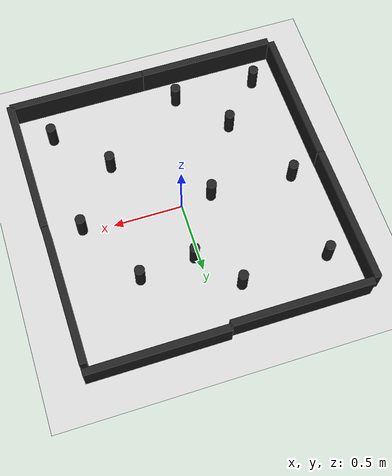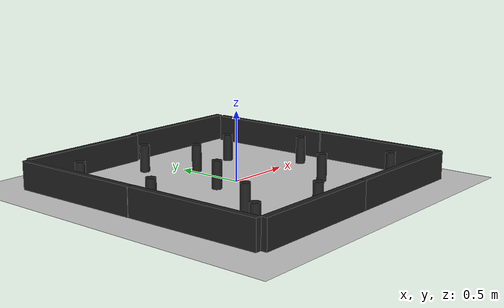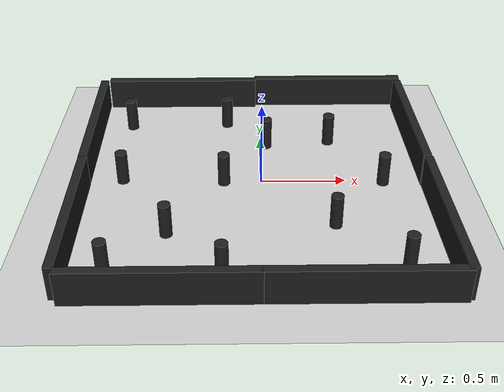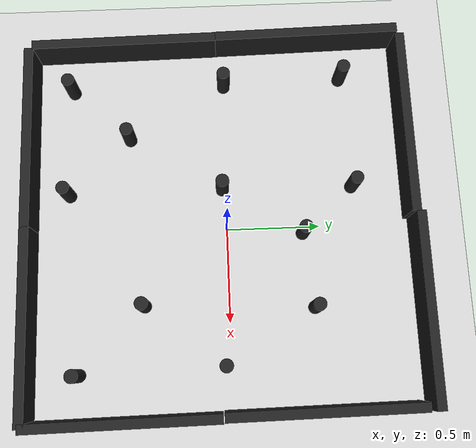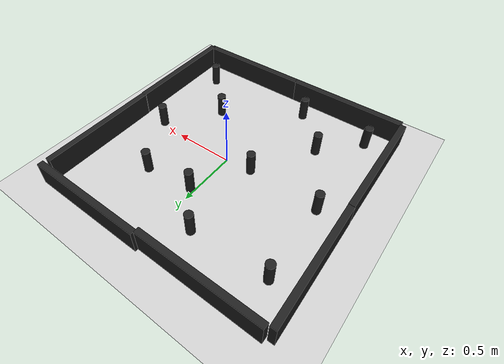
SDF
<sdf version="1.6">
 <world name="default">
  <light name="sun" type="directional">
   <pose>0 0 10 0 -0 0</pose>
   <diffuse>0.8 0.8 0.8 1</diffuse>
   <specular>0.2 0.2 0.2 1</specular>
   <attenuation>
    <range>1000</range>
    <constant>0.9</constant>
    <linear>0.01</linear>
    <quadratic>0.001</quadratic>
   </attenuation>
   <direction>-0.5 0.1 -0.9</direction>
  </light>
  <model name="ground_plane">
   <static>1</static>
   <link name="link">
    <collision name="collision">
     <geometry><plane><normal>0 0 1</normal><size>100 100</size></plane></geometry>
     <surface>
      <contact><collide_bitmask>65535</collide_bitmask></contact>
      <friction><ode><mu>100</mu><mu2>50</mu2></ode></friction>
     </surface>
    </collision>
    <visual name="visual">
     <cast_shadows>0</cast_shadows>
     <geometry><plane><normal>0 0 1</normal><size>100 100</size></plane></geometry>
     <material>
      <script><uri>file://media/materials/scripts/gazebo.material</uri><name>Gazebo/Grey</name></script>
     </material>
    </visual>
   </link>
  </model>
  <gravity>0 0 -9.8</gravity>
  <magnetic_field>6e-06 2.3e-05 -4.2e-05</magnetic_field>
  <atmosphere type="adiabatic"/>
  <physics name="default_physics" default="0" type="ode">
   <max_step_size>0.001</max_step_size>
   <real_time_factor>1</real_time_factor>
   <real_time_update_rate>1000</real_time_update_rate>
  </physics>
  <scene><ambient>0.4 0.4 0.4 1</ambient><background>0.7 0.7 0.7 1</background><shadows>1</shadows></scene>
  <audio><device>default</device></audio>
  <spherical_coordinates>
   <surface_model>EARTH_WGS84</surface_model>
   <latitude_deg>0</latitude_deg>
   <longitude_deg>0</longitude_deg>
   <elevation>0</elevation>
   <heading_deg>0</heading_deg>
  </spherical_coordinates>
  <model name="wall">
   <link name="link">
    <inertial>
     <mass>1</mass>
     <inertia>
      <ixx>0.166667</ixx>
      <ixy>0</ixy>
      <ixz>0</ixz>
      <iyy>0.166667</iyy>
      <iyz>0</iyz>
      <izz>0.166667</izz>
     </inertia>
    </inertial>
    <visual name="visual">
     <geometry><box><size>1 0.05 0.2</size></box></geometry>
     <material>
      <script><name>Gazebo/Black</name><uri>file://media/materials/scripts/gazebo.material</uri></script>
      <shader type="vertex"><normal_map>__default__</normal_map></shader>
      <ambient>0.3 0.3 0.3 1</ambient>
      <diffuse>0.7 0.7 0.7 1</diffuse>
      <specular>0.01 0.01 0.01 1</specular>
      <emissive>0 0 0 1</emissive>
     </material>
    </visual>
    <collision name="collision">
     <geometry><box><size>1 0.05 0.2</size></box></geometry>
     <surface>
      <friction>
       <ode><mu>1</mu><mu2>1</mu2><fdir1>0 0 0</fdir1><slip1>0</slip1><slip2>0</slip2></ode>
       <torsional>
        <coefficient>1</coefficient>
        <patch_radius>0</patch_radius>
        <surface_radius>0</surface_radius>
        <use_patch_radius>1</use_patch_radius>
        <ode><slip>0</slip></ode>
       </torsional>
      </friction>
      <bounce><restitution_coefficient>0</restitution_coefficient><threshold>1e+06</threshold></bounce>
      <contact>
       <collide_without_contact>0</collide_without_contact>
       <collide_without_contact_bitmask>1</collide_without_contact_bitmask>
       <collide_bitmask>1</collide_bitmask>
       <ode>
        <soft_cfm>0</soft_cfm>
        <soft_erp>0.2</soft_erp>
        <kp>1e+13</kp>
        <kd>1</kd>
        <max_vel>0.01</max_vel>
        <min_depth>0</min_depth>
       </ode>
       <bullet>
        <split_impulse>1</split_impulse>
        <split_impulse_penetration_threshold>-0.01</split_impulse_penetration_threshold>
        <soft_cfm>0</soft_cfm>
        <soft_erp>0.2</soft_erp>
        <kp>1e+13</kp>
        <kd>1</kd>
       </bullet>
      </contact>
     </surface>
    </collision>
   </link>
   <static>1</static>
   <pose>-0.526171 0.981901 0.1 0 -0 0</pose>
  </model>
  <model name="wall_clone">
   <link name="link">
    <inertial>
     <mass>1</mass>
     <inertia>
      <ixx>0.166667</ixx>
      <ixy>0</ixy>
      <ixz>0</ixz>
      <iyy>0.166667</iyy>
      <iyz>0</iyz>
      <izz>0.166667</izz>
     </inertia>
    </inertial>
    <visual name="visual">
     <geometry><box><size>1 0.05 0.2</size></box></geometry>
     <material>
      <script><name>Gazebo/Black</name><uri>file://media/materials/scripts/gazebo.material</uri></script>
      <shader type="vertex"><normal_map>__default__</normal_map></shader>
      <ambient>0.3 0.3 0.3 1</ambient>
      <diffuse>0.7 0.7 0.7 1</diffuse>
      <specular>0.01 0.01 0.01 1</specular>
      <emissive>0 0 0 1</emissive>
     </material>
    </visual>
    <collision name="collision">
     <geometry><box><size>1 0.05 0.2</size></box></geometry>
     <surface>
      <friction>
       <ode><mu>1</mu><mu2>1</mu2><fdir1>0 0 0</fdir1><slip1>0</slip1><slip2>0</slip2></ode>
       <torsional>
        <coefficient>1</coefficient>
        <patch_radius>0</patch_radius>
        <surface_radius>0</surface_radius>
        <use_patch_radius>1</use_patch_radius>
        <ode><slip>0</slip></ode>
       </torsional>
      </friction>
      <bounce><restitution_coefficient>0</restitution_coefficient><threshold>1e+06</threshold></bounce>
      <contact>
       <collide_without_contact>0</collide_without_contact>
       <collide_without_contact_bitmask>1</collide_without_contact_bitmask>
       <collide_bitmask>1</collide_bitmask>
       <ode>
        <soft_cfm>0</soft_cfm>
        <soft_erp>0.2</soft_erp>
        <kp>1e+13</kp>
        <kd>1</kd>
        <max_vel>0.01</max_vel>
        <min_depth>0</min_depth>
       </ode>
       <bullet>
        <split_impulse>1</split_impulse>
        <split_impulse_penetration_threshold>-0.01</split_impulse_penetration_threshold>
        <soft_cfm>0</soft_cfm>
        <soft_erp>0.2</soft_erp>
        <kp>1e+13</kp>
        <kd>1</kd>
       </bullet>
      </contact>
     </surface>
    </collision>
   </link>
   <static>1</static>
   <pose>0.484346 -1.04397 0.1 0 -0 0</pose>
  </model>
  <model name="wall_clone_0">
   <link name="link">
    <inertial>
     <mass>1</mass>
     <inertia>
      <ixx>0.166667</ixx>
      <ixy>0</ixy>
      <ixz>0</ixz>
      <iyy>0.166667</iyy>
      <iyz>0</iyz>
      <izz>0.166667</izz>
     </inertia>
    </inertial>
    <visual name="visual">
     <geometry><box><size>1 0.05 0.2</size></box></geometry>
     <material>
      <script><name>Gazebo/Black</name><uri>file://media/materials/scripts/gazebo.material</uri></script>
      <shader type="vertex"><normal_map>__default__</normal_map></shader>
      <ambient>0.3 0.3 0.3 1</ambient>
      <diffuse>0.7 0.7 0.7 1</diffuse>
      <specular>0.01 0.01 0.01 1</specular>
      <emissive>0 0 0 1</emissive>
     </material>
    </visual>
    <collision name="collision">
     <geometry><box><size>1 0.05 0.2</size></box></geometry>
     <surface>
      <friction>
       <ode><mu>1</mu><mu2>1</mu2><fdir1>0 0 0</fdir1><slip1>0</slip1><slip2>0</slip2></ode>
       <torsional>
        <coefficient>1</coefficient>
        <patch_radius>0</patch_radius>
        <surface_radius>0</surface_radius>
        <use_patch_radius>1</use_patch_radius>
        <ode><slip>0</slip></ode>
       </torsional>
      </friction>
      <bounce><restitution_coefficient>0</restitution_coefficient><threshold>1e+06</threshold></bounce>
      <contact>
       <collide_without_contact>0</collide_without_contact>
       <collide_without_contact_bitmask>1</collide_without_contact_bitmask>
       <collide_bitmask>1</collide_bitmask>
       <ode>
        <soft_cfm>0</soft_cfm>
        <soft_erp>0.2</soft_erp>
        <kp>1e+13</kp>
        <kd>1</kd>
        <max_vel>0.01</max_vel>
        <min_depth>0</min_depth>
       </ode>
       <bullet>
        <split_impulse>1</split_impulse>
        <split_impulse_penetration_threshold>-0.01</split_impulse_penetration_threshold>
        <soft_cfm>0</soft_cfm>
        <soft_erp>0.2</soft_erp>
        <kp>1e+13</kp>
        <kd>1</kd>
       </bullet>
      </contact>
     </surface>
    </collision>
   </link>
   <static>1</static>
   <pose>-0.508962 -1.04408 0.1 0 -0 0</pose>
  </model>
  <model name="wall_clone_0_clone">
   <link name="link">
    <inertial>
     <mass>1</mass>
     <inertia>
      <ixx>0.166667</ixx>
      <ixy>0</ixy>
      <ixz>0</ixz>
      <iyy>0.166667</iyy>
      <iyz>0</iyz>
      <izz>0.166667</izz>
     </inertia>
    </inertial>
    <visual name="visual">
     <geometry><box><size>1 0.05 0.2</size></box></geometry>
     <material>
      <script><name>Gazebo/Black</name><uri>file://media/materials/scripts/gazebo.material</uri></script>
      <shader type="vertex"><normal_map>__default__</normal_map></shader>
      <ambient>0.3 0.3 0.3 1</ambient>
      <diffuse>0.7 0.7 0.7 1</diffuse>
      <specular>0.01 0.01 0.01 1</specular>
      <emissive>0 0 0 1</emissive>
     </material>
    </visual>
    <collision name="collision">
     <geometry><box><size>1 0.05 0.2</size></box></geometry>
     <surface>
      <friction>
       <ode><mu>1</mu><mu2>1</mu2><fdir1>0 0 0</fdir1><slip1>0</slip1><slip2>0</slip2></ode>
       <torsional>
        <coefficient>1</coefficient>
        <patch_radius>0</patch_radius>
        <surface_radius>0</surface_radius>
        <use_patch_radius>1</use_patch_radius>
        <ode><slip>0</slip></ode>
       </torsional>
      </friction>
      <bounce><restitution_coefficient>0</restitution_coefficient><threshold>1e+06</threshold></bounce>
      <contact>
       <collide_without_contact>0</collide_without_contact>
       <collide_without_contact_bitmask>1</collide_without_contact_bitmask>
       <collide_bitmask>1</collide_bitmask>
       <ode>
        <soft_cfm>0</soft_cfm>
        <soft_erp>0.2</soft_erp>
        <kp>1e+13</kp>
        <kd>1</kd>
        <max_vel>0.01</max_vel>
        <min_depth>0</min_depth>
       </ode>
       <bullet>
        <split_impulse>1</split_impulse>
        <split_impulse_penetration_threshold>-0.01</split_impulse_penetration_threshold>
        <soft_cfm>0</soft_cfm>
        <soft_erp>0.2</soft_erp>
        <kp>1e+13</kp>
        <kd>1</kd>
       </bullet>
      </contact>
     </surface>
    </collision>
   </link>
   <static>1</static>
   <pose>0.472598 1.00535 0.1 0 -0 0</pose>
  </model>
  <model name="wall_clone_0_clone_0">
   <link name="link">
    <inertial>
     <mass>1</mass>
     <inertia>
      <ixx>0.166667</ixx>
      <ixy>0</ixy>
      <ixz>0</ixz>
      <iyy>0.166667</iyy>
      <iyz>0</iyz>
      <izz>0.166667</izz>
     </inertia>
    </inertial>
    <visual name="visual">
     <geometry><box><size>1 0.05 0.2</size></box></geometry>
     <material>
      <script><name>Gazebo/Black</name><uri>file://media/materials/scripts/gazebo.material</uri></script>
      <shader type="vertex"><normal_map>__default__</normal_map></shader>
      <ambient>0.3 0.3 0.3 1</ambient>
      <diffuse>0.7 0.7 0.7 1</diffuse>
      <specular>0.01 0.01 0.01 1</specular>
      <emissive>0 0 0 1</emissive>
     </material>
    </visual>
    <collision name="collision">
     <geometry><box><size>1 0.05 0.2</size></box></geometry>
     <surface>
      <friction>
       <ode><mu>1</mu><mu2>1</mu2><fdir1>0 0 0</fdir1><slip1>0</slip1><slip2>0</slip2></ode>
       <torsional>
        <coefficient>1</coefficient>
        <patch_radius>0</patch_radius>
        <surface_radius>0</surface_radius>
        <use_patch_radius>1</use_patch_radius>
        <ode><slip>0</slip></ode>
       </torsional>
      </friction>
      <bounce><restitution_coefficient>0</restitution_coefficient><threshold>1e+06</threshold></bounce>
      <contact>
       <collide_without_contact>0</collide_without_contact>
       <collide_without_contact_bitmask>1</collide_without_contact_bitmask>
       <collide_bitmask>1</collide_bitmask>
       <ode>
        <soft_cfm>0</soft_cfm>
        <soft_erp>0.2</soft_erp>
        <kp>1e+13</kp>
        <kd>1</kd>
        <max_vel>0.01</max_vel>
        <min_depth>0</min_depth>
       </ode>
       <bullet>
        <split_impulse>1</split_impulse>
        <split_impulse_penetration_threshold>-0.01</split_impulse_penetration_threshold>
        <soft_cfm>0</soft_cfm>
        <soft_erp>0.2</soft_erp>
        <kp>1e+13</kp>
        <kd>1</kd>
       </bullet>
      </contact>
     </surface>
    </collision>
   </link>
   <static>1</static>
   <pose>-1.03402 -0.526795 0.1 0 -0 1.58499</pose>
  </model>
  <model name="wall_clone_0_clone_1">
   <link name="link">
    <inertial>
     <mass>1</mass>
     <inertia>
      <ixx>0.166667</ixx>
      <ixy>0</ixy>
      <ixz>0</ixz>
      <iyy>0.166667</iyy>
      <iyz>0</iyz>
      <izz>0.166667</izz>
     </inertia>
    </inertial>
    <visual name="visual">
     <geometry><box><size>1 0.05 0.2</size></box></geometry>
     <material>
      <script><name>Gazebo/Black</name><uri>file://media/materials/scripts/gazebo.material</uri></script>
      <shader type="vertex"><normal_map>__default__</normal_map></shader>
      <ambient>0.3 0.3 0.3 1</ambient>
      <diffuse>0.7 0.7 0.7 1</diffuse>
      <specular>0.01 0.01 0.01 1</specular>
      <emissive>0 0 0 1</emissive>
     </material>
    </visual>
    <collision name="collision">
     <geometry><box><size>1 0.05 0.2</size></box></geometry>
     <surface>
      <friction>
       <ode><mu>1</mu><mu2>1</mu2><fdir1>0 0 0</fdir1><slip1>0</slip1><slip2>0</slip2></ode>
       <torsional>
        <coefficient>1</coefficient>
        <patch_radius>0</patch_radius>
        <surface_radius>0</surface_radius>
        <use_patch_radius>1</use_patch_radius>
        <ode><slip>0</slip></ode>
       </torsional>
      </friction>
      <bounce><restitution_coefficient>0</restitution_coefficient><threshold>1e+06</threshold></bounce>
      <contact>
       <collide_without_contact>0</collide_without_contact>
       <collide_without_contact_bitmask>1</collide_without_contact_bitmask>
       <collide_bitmask>1</collide_bitmask>
       <ode>
        <soft_cfm>0</soft_cfm>
        <soft_erp>0.2</soft_erp>
        <kp>1e+13</kp>
        <kd>1</kd>
        <max_vel>0.01</max_vel>
        <min_depth>0</min_depth>
       </ode>
       <bullet>
        <split_impulse>1</split_impulse>
        <split_impulse_penetration_threshold>-0.01</split_impulse_penetration_threshold>
        <soft_cfm>0</soft_cfm>
        <soft_erp>0.2</soft_erp>
        <kp>1e+13</kp>
        <kd>1</kd>
       </bullet>
      </contact>
     </surface>
    </collision>
   </link>
   <static>1</static>
   <pose>-1.05265 0.471629 0.1 0 -0 1.59062</pose>
  </model>
  <model name="wall_clone_0_clone_0_clone">
   <link name="link">
    <inertial>
     <mass>1</mass>
     <inertia>
      <ixx>0.166667</ixx>
      <ixy>0</ixy>
      <ixz>0</ixz>
      <iyy>0.166667</iyy>
      <iyz>0</iyz>
      <izz>0.166667</izz>
     </inertia>
    </inertial>
    <visual name="visual">
     <geometry><box><size>1 0.05 0.2</size></box></geometry>
     <material>
      <script><name>Gazebo/Black</name><uri>file://media/materials/scripts/gazebo.material</uri></script>
      <shader type="vertex"><normal_map>__default__</normal_map></shader>
      <ambient>0.3 0.3 0.3 1</ambient>
      <diffuse>0.7 0.7 0.7 1</diffuse>
      <specular>0.01 0.01 0.01 1</specular>
      <emissive>0 0 0 1</emissive>
     </material>
    </visual>
    <collision name="collision">
     <geometry><box><size>1 0.05 0.2</size></box></geometry>
     <surface>
      <friction>
       <ode><mu>1</mu><mu2>1</mu2><fdir1>0 0 0</fdir1><slip1>0</slip1><slip2>0</slip2></ode>
       <torsional>
        <coefficient>1</coefficient>
        <patch_radius>0</patch_radius>
        <surface_radius>0</surface_radius>
        <use_patch_radius>1</use_patch_radius>
        <ode><slip>0</slip></ode>
       </torsional>
      </friction>
      <bounce><restitution_coefficient>0</restitution_coefficient><threshold>1e+06</threshold></bounce>
      <contact>
       <collide_without_contact>0</collide_without_contact>
       <collide_without_contact_bitmask>1</collide_without_contact_bitmask>
       <collide_bitmask>1</collide_bitmask>
       <ode>
        <soft_cfm>0</soft_cfm>
        <soft_erp>0.2</soft_erp>
        <kp>1e+13</kp>
        <kd>1</kd>
        <max_vel>0.01</max_vel>
        <min_depth>0</min_depth>
       </ode>
       <bullet>
        <split_impulse>1</split_impulse>
        <split_impulse_penetration_threshold>-0.01</split_impulse_penetration_threshold>
        <soft_cfm>0</soft_cfm>
        <soft_erp>0.2</soft_erp>
        <kp>1e+13</kp>
        <kd>1</kd>
       </bullet>
      </contact>
     </surface>
    </collision>
   </link>
   <static>1</static>
   <pose>0.976348 -0.553161 0.1 0 -0 1.58499</pose>
  </model>
  <model name="wall_clone_0_clone_0_clone_clone">
   <link name="link">
    <inertial>
     <mass>1</mass>
     <inertia>
      <ixx>0.166667</ixx>
      <ixy>0</ixy>
      <ixz>0</ixz>
      <iyy>0.166667</iyy>
      <iyz>0</iyz>
      <izz>0.166667</izz>
     </inertia>
    </inertial>
    <visual name="visual">
     <geometry><box><size>1 0.05 0.2</size></box></geometry>
     <material>
      <script><name>Gazebo/Black</name><uri>file://media/materials/scripts/gazebo.material</uri></script>
      <shader type="vertex"><normal_map>__default__</normal_map></shader>
      <ambient>0.3 0.3 0.3 1</ambient>
      <diffuse>0.7 0.7 0.7 1</diffuse>
      <specular>0.01 0.01 0.01 1</specular>
      <emissive>0 0 0 1</emissive>
     </material>
    </visual>
    <collision name="collision">
     <geometry><box><size>1 0.05 0.2</size></box></geometry>
     <surface>
      <friction>
       <ode><mu>1</mu><mu2>1</mu2><fdir1>0 0 0</fdir1><slip1>0</slip1><slip2>0</slip2></ode>
       <torsional>
        <coefficient>1</coefficient>
        <patch_radius>0</patch_radius>
        <surface_radius>0</surface_radius>
        <use_patch_radius>1</use_patch_radius>
        <ode><slip>0</slip></ode>
       </torsional>
      </friction>
      <bounce><restitution_coefficient>0</restitution_coefficient><threshold>1e+06</threshold></bounce>
      <contact>
       <collide_without_contact>0</collide_without_contact>
       <collide_without_contact_bitmask>1</collide_without_contact_bitmask>
       <collide_bitmask>1</collide_bitmask>
       <ode>
        <soft_cfm>0</soft_cfm>
        <soft_erp>0.2</soft_erp>
        <kp>1e+13</kp>
        <kd>1</kd>
        <max_vel>0.01</max_vel>
        <min_depth>0</min_depth>
       </ode>
       <bullet>
        <split_impulse>1</split_impulse>
        <split_impulse_penetration_threshold>-0.01</split_impulse_penetration_threshold>
        <soft_cfm>0</soft_cfm>
        <soft_erp>0.2</soft_erp>
        <kp>1e+13</kp>
        <kd>1</kd>
       </bullet>
      </contact>
     </surface>
    </collision>
   </link>
   <static>1</static>
   <pose>0.958155 0.453326 0.1 0 -0 1.58499</pose>
  </model>
  <model name="cylinder">
   <link name="link">
    <inertial>
     <mass>1</mass>
     <inertia><ixx>0.145833</ixx><ixy>0</ixy><ixz>0</ixz><iyy>0.145833</iyy><iyz>0</iyz><izz>0.125</izz></inertia>
    </inertial>
    <visual name="visual">
     <geometry><cylinder><radius>0.035</radius><length>0.2</length></cylinder></geometry>
     <material>
      <script><name>Gazebo/Black</name><uri>file://media/materials/scripts/gazebo.material</uri></script>
      <shader type="vertex"><normal_map>__default__</normal_map></shader>
      <ambient>0.3 0.3 0.3 1</ambient>
      <diffuse>0.7 0.7 0.7 1</diffuse>
      <specular>0.01 0.01 0.01 1</specular>
      <emissive>0 0 0 1</emissive>
     </material>
    </visual>
    <collision name="collision">
     <geometry><cylinder><radius>0.035</radius><length>0.2</length></cylinder></geometry>
     <surface>
      <friction>
       <ode><mu>1</mu><mu2>1</mu2><fdir1>0 0 0</fdir1><slip1>0</slip1><slip2>0</slip2></ode>
       <torsional>
        <coefficient>1</coefficient>
        <patch_radius>0</patch_radius>
        <surface_radius>0</surface_radius>
        <use_patch_radius>1</use_patch_radius>
        <ode><slip>0</slip></ode>
       </torsional>
      </friction>
      <bounce><restitution_coefficient>0</restitution_coefficient><threshold>1e+06</threshold></bounce>
      <contact>
       <collide_without_contact>0</collide_without_contact>
       <collide_without_contact_bitmask>1</collide_without_contact_bitmask>
       <collide_bitmask>1</collide_bitmask>
       <ode>
        <soft_cfm>0</soft_cfm>
        <soft_erp>0.2</soft_erp>
        <kp>1e+13</kp>
        <kd>1</kd>
        <max_vel>0.01</max_vel>
        <min_depth>0</min_depth>
       </ode>
       <bullet>
        <split_impulse>1</split_impulse>
        <split_impulse_penetration_threshold>-0.01</split_impulse_penetration_threshold>
        <soft_cfm>0</soft_cfm>
        <soft_erp>0.2</soft_erp>
        <kp>1e+13</kp>
        <kd>1</kd>
       </bullet>
      </contact>
     </surface>
    </collision>
   </link>
   <static>1</static>
   <pose>-0.81738 -0.829914 0.1 0 -0 0</pose>
  </model>
  <model name="cylinder_clone">
   <link name="link">
    <inertial>
     <mass>1</mass>
     <inertia><ixx>0.145833</ixx><ixy>0</ixy><ixz>0</ixz><iyy>0.145833</iyy><iyz>0</iyz><izz>0.125</izz></inertia>
    </inertial>
    <visual name="visual">
     <geometry><cylinder><radius>0.035</radius><length>0.2</length></cylinder></geometry>
     <material>
      <script><name>Gazebo/Black</name><uri>file://media/materials/scripts/gazebo.material</uri></script>
      <shader type="vertex"><normal_map>__default__</normal_map></shader>
      <ambient>0.3 0.3 0.3 1</ambient>
      <diffuse>0.7 0.7 0.7 1</diffuse>
      <specular>0.01 0.01 0.01 1</specular>
      <emissive>0 0 0 1</emissive>
     </material>
    </visual>
    <collision name="collision">
     <geometry><cylinder><radius>0.035</radius><length>0.2</length></cylinder></geometry>
     <surface>
      <friction>
       <ode><mu>1</mu><mu2>1</mu2><fdir1>0 0 0</fdir1><slip1>0</slip1><slip2>0</slip2></ode>
       <torsional>
        <coefficient>1</coefficient>
        <patch_radius>0</patch_radius>
        <surface_radius>0</surface_radius>
        <use_patch_radius>1</use_patch_radius>
        <ode><slip>0</slip></ode>
       </torsional>
      </friction>
      <bounce><restitution_coefficient>0</restitution_coefficient><threshold>1e+06</threshold></bounce>
      <contact>
       <collide_without_contact>0</collide_without_contact>
       <collide_without_contact_bitmask>1</collide_without_contact_bitmask>
       <collide_bitmask>1</collide_bitmask>
       <ode>
        <soft_cfm>0</soft_cfm>
        <soft_erp>0.2</soft_erp>
        <kp>1e+13</kp>
        <kd>1</kd>
        <max_vel>0.01</max_vel>
        <min_depth>0</min_depth>
       </ode>
       <bullet>
        <split_impulse>1</split_impulse>
        <split_impulse_penetration_threshold>-0.01</split_impulse_penetration_threshold>
        <soft_cfm>0</soft_cfm>
        <soft_erp>0.2</soft_erp>
        <kp>1e+13</kp>
        <kd>1</kd>
       </bullet>
      </contact>
     </surface>
    </collision>
   </link>
   <static>1</static>
   <pose>-0.825084 0.010533 0.1 0 -0 0</pose>
  </model>
  <model name="cylinder_clone_0">
   <link name="link">
    <inertial>
     <mass>1</mass>
     <inertia><ixx>0.145833</ixx><ixy>0</ixy><ixz>0</ixz><iyy>0.145833</iyy><iyz>0</iyz><izz>0.125</izz></inertia>
    </inertial>
    <visual name="visual">
     <geometry><cylinder><radius>0.035</radius><length>0.2</length></cylinder></geometry>
     <material>
      <script><name>Gazebo/Black</name><uri>file://media/materials/scripts/gazebo.material</uri></script>
      <shader type="vertex"><normal_map>__default__</normal_map></shader>
      <ambient>0.3 0.3 0.3 1</ambient>
      <diffuse>0.7 0.7 0.7 1</diffuse>
      <specular>0.01 0.01 0.01 1</specular>
      <emissive>0 0 0 1</emissive>
     </material>
    </visual>
    <collision name="collision">
     <geometry><cylinder><radius>0.035</radius><length>0.2</length></cylinder></geometry>
     <surface>
      <friction>
       <ode><mu>1</mu><mu2>1</mu2><fdir1>0 0 0</fdir1><slip1>0</slip1><slip2>0</slip2></ode>
       <torsional>
        <coefficient>1</coefficient>
        <patch_radius>0</patch_radius>
        <surface_radius>0</surface_radius>
        <use_patch_radius>1</use_patch_radius>
        <ode><slip>0</slip></ode>
       </torsional>
      </friction>
      <bounce><restitution_coefficient>0</restitution_coefficient><threshold>1e+06</threshold></bounce>
      <contact>
       <collide_without_contact>0</collide_without_contact>
       <collide_without_contact_bitmask>1</collide_without_contact_bitmask>
       <collide_bitmask>1</collide_bitmask>
       <ode>
        <soft_cfm>0</soft_cfm>
        <soft_erp>0.2</soft_erp>
        <kp>1e+13</kp>
        <kd>1</kd>
        <max_vel>0.01</max_vel>
        <min_depth>0</min_depth>
       </ode>
       <bullet>
        <split_impulse>1</split_impulse>
        <split_impulse_penetration_threshold>-0.01</split_impulse_penetration_threshold>
        <soft_cfm>0</soft_cfm>
        <soft_erp>0.2</soft_erp>
        <kp>1e+13</kp>
        <kd>1</kd>
       </bullet>
      </contact>
     </surface>
    </collision>
   </link>
   <static>1</static>
   <pose>-0.844742 0.664209 0.1 0 -0 0</pose>
  </model>
  <model name="cylinder_clone_clone">
   <link name="link">
    <inertial>
     <mass>1</mass>
     <inertia><ixx>0.145833</ixx><ixy>0</ixy><ixz>0</ixz><iyy>0.145833</iyy><iyz>0</iyz><izz>0.125</izz></inertia>
    </inertial>
    <visual name="visual">
     <geometry><cylinder><radius>0.035</radius><length>0.2</length></cylinder></geometry>
     <material>
      <script><name>Gazebo/Black</name><uri>file://media/materials/scripts/gazebo.material</uri></script>
      <shader type="vertex"><normal_map>__default__</normal_map></shader>
      <ambient>0.3 0.3 0.3 1</ambient>
      <diffuse>0.7 0.7 0.7 1</diffuse>
      <specular>0.01 0.01 0.01 1</specular>
      <emissive>0 0 0 1</emissive>
     </material>
    </visual>
    <collision name="collision">
     <geometry><cylinder><radius>0.035</radius><length>0.2</length></cylinder></geometry>
     <surface>
      <friction>
       <ode><mu>1</mu><mu2>1</mu2><fdir1>0 0 0</fdir1><slip1>0</slip1><slip2>0</slip2></ode>
       <torsional>
        <coefficient>1</coefficient>
        <patch_radius>0</patch_radius>
        <surface_radius>0</surface_radius>
        <use_patch_radius>1</use_patch_radius>
        <ode><slip>0</slip></ode>
       </torsional>
      </friction>
      <bounce><restitution_coefficient>0</restitution_coefficient><threshold>1e+06</threshold></bounce>
      <contact>
       <collide_without_contact>0</collide_without_contact>
       <collide_without_contact_bitmask>1</collide_without_contact_bitmask>
       <collide_bitmask>1</collide_bitmask>
       <ode>
        <soft_cfm>0</soft_cfm>
        <soft_erp>0.2</soft_erp>
        <kp>1e+13</kp>
        <kd>1</kd>
        <max_vel>0.01</max_vel>
        <min_depth>0</min_depth>
       </ode>
       <bullet>
        <split_impulse>1</split_impulse>
        <split_impulse_penetration_threshold>-0.01</split_impulse_penetration_threshold>
        <soft_cfm>0</soft_cfm>
        <soft_erp>0.2</soft_erp>
        <kp>1e+13</kp>
        <kd>1</kd>
       </bullet>
      </contact>
     </surface>
    </collision>
   </link>
   <static>1</static>
   <pose>-0.215862 -0.848873 0.1 0 -0 0</pose>
  </model>
  <model name="cylinder_clone_clone_0">
   <link name="link">
    <inertial>
     <mass>1</mass>
     <inertia><ixx>0.145833</ixx><ixy>0</ixy><ixz>0</ixz><iyy>0.145833</iyy><iyz>0</iyz><izz>0.125</izz></inertia>
    </inertial>
    <visual name="visual">
     <geometry><cylinder><radius>0.035</radius><length>0.2</length></cylinder></geometry>
     <material>
      <script><name>Gazebo/Black</name><uri>file://media/materials/scripts/gazebo.material</uri></script>
      <shader type="vertex"><normal_map>__default__</normal_map></shader>
      <ambient>0.3 0.3 0.3 1</ambient>
      <diffuse>0.7 0.7 0.7 1</diffuse>
      <specular>0.01 0.01 0.01 1</specular>
      <emissive>0 0 0 1</emissive>
     </material>
    </visual>
    <collision name="collision">
     <geometry><cylinder><radius>0.035</radius><length>0.2</length></cylinder></geometry>
     <surface>
      <friction>
       <ode><mu>1</mu><mu2>1</mu2><fdir1>0 0 0</fdir1><slip1>0</slip1><slip2>0</slip2></ode>
       <torsional>
        <coefficient>1</coefficient>
        <patch_radius>0</patch_radius>
        <surface_radius>0</surface_radius>
        <use_patch_radius>1</use_patch_radius>
        <ode><slip>0</slip></ode>
       </torsional>
      </friction>
      <bounce><restitution_coefficient>0</restitution_coefficient><threshold>1e+06</threshold></bounce>
      <contact>
       <collide_without_contact>0</collide_without_contact>
       <collide_without_contact_bitmask>1</collide_without_contact_bitmask>
       <collide_bitmask>1</collide_bitmask>
       <ode>
        <soft_cfm>0</soft_cfm>
        <soft_erp>0.2</soft_erp>
        <kp>1e+13</kp>
        <kd>1</kd>
        <max_vel>0.01</max_vel>
        <min_depth>0</min_depth>
       </ode>
       <bullet>
        <split_impulse>1</split_impulse>
        <split_impulse_penetration_threshold>-0.01</split_impulse_penetration_threshold>
        <soft_cfm>0</soft_cfm>
        <soft_erp>0.2</soft_erp>
        <kp>1e+13</kp>
        <kd>1</kd>
       </bullet>
      </contact>
     </surface>
    </collision>
   </link>
   <static>1</static>
   <pose>-0.22333 -0.016393 0.1 0 -0 0</pose>
  </model>
  <model name="cylinder_clone_clone_0_clone">
   <link name="link">
    <inertial>
     <mass>1</mass>
     <inertia><ixx>0.145833</ixx><ixy>0</ixy><ixz>0</ixz><iyy>0.145833</iyy><iyz>0</iyz><izz>0.125</izz></inertia>
    </inertial>
    <visual name="visual">
     <geometry><cylinder><radius>0.035</radius><length>0.2</length></cylinder></geometry>
     <material>
      <script><name>Gazebo/Black</name><uri>file://media/materials/scripts/gazebo.material</uri></script>
      <shader type="vertex"><normal_map>__default__</normal_map></shader>
      <ambient>0.3 0.3 0.3 1</ambient>
      <diffuse>0.7 0.7 0.7 1</diffuse>
      <specular>0.01 0.01 0.01 1</specular>
      <emissive>0 0 0 1</emissive>
     </material>
    </visual>
    <collision name="collision">
     <geometry><cylinder><radius>0.035</radius><length>0.2</length></cylinder></geometry>
     <surface>
      <friction>
       <ode><mu>1</mu><mu2>1</mu2><fdir1>0 0 0</fdir1><slip1>0</slip1><slip2>0</slip2></ode>
       <torsional>
        <coefficient>1</coefficient>
        <patch_radius>0</patch_radius>
        <surface_radius>0</surface_radius>
        <use_patch_radius>1</use_patch_radius>
        <ode><slip>0</slip></ode>
       </torsional>
      </friction>
      <bounce><restitution_coefficient>0</restitution_coefficient><threshold>1e+06</threshold></bounce>
      <contact>
       <collide_without_contact>0</collide_without_contact>
       <collide_without_contact_bitmask>1</collide_without_contact_bitmask>
       <collide_bitmask>1</collide_bitmask>
       <ode>
        <soft_cfm>0</soft_cfm>
        <soft_erp>0.2</soft_erp>
        <kp>1e+13</kp>
        <kd>1</kd>
        <max_vel>0.01</max_vel>
        <min_depth>0</min_depth>
       </ode>
       <bullet>
        <split_impulse>1</split_impulse>
        <split_impulse_penetration_threshold>-0.01</split_impulse_penetration_threshold>
        <soft_cfm>0</soft_cfm>
        <soft_erp>0.2</soft_erp>
        <kp>1e+13</kp>
        <kd>1</kd>
       </bullet>
      </contact>
     </surface>
    </collision>
   </link>
   <static>1</static>
   <pose>-0.215669 0.688805 0.1 0 -0 0</pose>
  </model>
  <model name="cylinder_clone_clone_0_clone_0">
   <link name="link">
    <inertial>
     <mass>1</mass>
     <inertia><ixx>0.145833</ixx><ixy>0</ixy><ixz>0</ixz><iyy>0.145833</iyy><iyz>0</iyz><izz>0.125</izz></inertia>
    </inertial>
    <visual name="visual">
     <geometry><cylinder><radius>0.035</radius><length>0.2</length></cylinder></geometry>
     <material>
      <script><name>Gazebo/Black</name><uri>file://media/materials/scripts/gazebo.material</uri></script>
      <shader type="vertex"><normal_map>__default__</normal_map></shader>
      <ambient>0.3 0.3 0.3 1</ambient>
      <diffuse>0.7 0.7 0.7 1</diffuse>
      <specular>0.01 0.01 0.01 1</specular>
      <emissive>0 0 0 1</emissive>
     </material>
    </visual>
    <collision name="collision">
     <geometry><cylinder><radius>0.035</radius><length>0.2</length></cylinder></geometry>
     <surface>
      <friction>
       <ode><mu>1</mu><mu2>1</mu2><fdir1>0 0 0</fdir1><slip1>0</slip1><slip2>0</slip2></ode>
       <torsional>
        <coefficient>1</coefficient>
        <patch_radius>0</patch_radius>
        <surface_radius>0</surface_radius>
        <use_patch_radius>1</use_patch_radius>
        <ode><slip>0</slip></ode>
       </torsional>
      </friction>
      <bounce><restitution_coefficient>0</restitution_coefficient><threshold>1e+06</threshold></bounce>
      <contact>
       <collide_without_contact>0</collide_without_contact>
       <collide_without_contact_bitmask>1</collide_without_contact_bitmask>
       <collide_bitmask>1</collide_bitmask>
       <ode>
        <soft_cfm>0</soft_cfm>
        <soft_erp>0.2</soft_erp>
        <kp>1e+13</kp>
        <kd>1</kd>
        <max_vel>0.01</max_vel>
        <min_depth>0</min_depth>
       </ode>
       <bullet>
        <split_impulse>1</split_impulse>
        <split_impulse_penetration_threshold>-0.01</split_impulse_penetration_threshold>
        <soft_cfm>0</soft_cfm>
        <soft_erp>0.2</soft_erp>
        <kp>1e+13</kp>
        <kd>1</kd>
       </bullet>
      </contact>
     </surface>
    </collision>
   </link>
   <static>1</static>
   <pose>0.43455 0.449779 0.1 0 -0 0</pose>
  </model>
  <model name="cylinder_clone_clone_0_clone_1">
   <link name="link">
    <inertial>
     <mass>1</mass>
     <inertia><ixx>0.145833</ixx><ixy>0</ixy><ixz>0</ixz><iyy>0.145833</iyy><iyz>0</iyz><izz>0.125</izz></inertia>
    </inertial>
    <visual name="visual">
     <geometry><cylinder><radius>0.035</radius><length>0.2</length></cylinder></geometry>
     <material>
      <script><name>Gazebo/Black</name><uri>file://media/materials/scripts/gazebo.material</uri></script>
      <shader type="vertex"><normal_map>__default__</normal_map></shader>
      <ambient>0.3 0.3 0.3 1</ambient>
      <diffuse>0.7 0.7 0.7 1</diffuse>
      <specular>0.01 0.01 0.01 1</specular>
      <emissive>0 0 0 1</emissive>
     </material>
    </visual>
    <collision name="collision">
     <geometry><cylinder><radius>0.035</radius><length>0.2</length></cylinder></geometry>
     <surface>
      <friction>
       <ode><mu>1</mu><mu2>1</mu2><fdir1>0 0 0</fdir1><slip1>0</slip1><slip2>0</slip2></ode>
       <torsional>
        <coefficient>1</coefficient>
        <patch_radius>0</patch_radius>
        <surface_radius>0</surface_radius>
        <use_patch_radius>1</use_patch_radius>
        <ode><slip>0</slip></ode>
       </torsional>
      </friction>
      <bounce><restitution_coefficient>0</restitution_coefficient><threshold>1e+06</threshold></bounce>
      <contact>
       <collide_without_contact>0</collide_without_contact>
       <collide_without_contact_bitmask>1</collide_without_contact_bitmask>
       <collide_bitmask>1</collide_bitmask>
       <ode>
        <soft_cfm>0</soft_cfm>
        <soft_erp>0.2</soft_erp>
        <kp>1e+13</kp>
        <kd>1</kd>
        <max_vel>0.01</max_vel>
        <min_depth>0</min_depth>
       </ode>
       <bullet>
        <split_impulse>1</split_impulse>
        <split_impulse_penetration_threshold>-0.01</split_impulse_penetration_threshold>
        <soft_cfm>0</soft_cfm>
        <soft_erp>0.2</soft_erp>
        <kp>1e+13</kp>
        <kd>1</kd>
       </bullet>
      </contact>
     </surface>
    </collision>
   </link>
   <static>1</static>
   <pose>0.399071 -0.446748 0.1 0 -0 0</pose>
  </model>
  <model name="cylinder_clone_clone_0_clone_2">
   <link name="link">
    <inertial>
     <mass>1</mass>
     <inertia><ixx>0.145833</ixx><ixy>0</ixy><ixz>0</ixz><iyy>0.145833</iyy><iyz>0</iyz><izz>0.125</izz></inertia>
    </inertial>
    <visual name="visual">
     <geometry><cylinder><radius>0.035</radius><length>0.2</length></cylinder></geometry>
     <material>
      <script><name>Gazebo/Black</name><uri>file://media/materials/scripts/gazebo.material</uri></script>
      <shader type="vertex"><normal_map>__default__</normal_map></shader>
      <ambient>0.3 0.3 0.3 1</ambient>
      <diffuse>0.7 0.7 0.7 1</diffuse>
      <specular>0.01 0.01 0.01 1</specular>
      <emissive>0 0 0 1</emissive>
     </material>
    </visual>
    <collision name="collision">
     <geometry><cylinder><radius>0.035</radius><length>0.2</length></cylinder></geometry>
     <surface>
      <friction>
       <ode><mu>1</mu><mu2>1</mu2><fdir1>0 0 0</fdir1><slip1>0</slip1><slip2>0</slip2></ode>
       <torsional>
        <coefficient>1</coefficient>
        <patch_radius>0</patch_radius>
        <surface_radius>0</surface_radius>
        <use_patch_radius>1</use_patch_radius>
        <ode><slip>0</slip></ode>
       </torsional>
      </friction>
      <bounce><restitution_coefficient>0</restitution_coefficient><threshold>1e+06</threshold></bounce>
      <contact>
       <collide_without_contact>0</collide_without_contact>
       <collide_without_contact_bitmask>1</collide_without_contact_bitmask>
       <collide_bitmask>1</collide_bitmask>
       <ode>
        <soft_cfm>0</soft_cfm>
        <soft_erp>0.2</soft_erp>
        <kp>1e+13</kp>
        <kd>1</kd>
        <max_vel>0.01</max_vel>
        <min_depth>0</min_depth>
       </ode>
       <bullet>
        <split_impulse>1</split_impulse>
        <split_impulse_penetration_threshold>-0.01</split_impulse_penetration_threshold>
        <soft_cfm>0</soft_cfm>
        <soft_erp>0.2</soft_erp>
        <kp>1e+13</kp>
        <kd>1</kd>
       </bullet>
      </contact>
     </surface>
    </collision>
   </link>
   <static>1</static>
   <pose>0.719942 -0.02845 0.1 0 -0 0</pose>
  </model>
  <model name="cylinder_clone_clone_0_clone_3">
   <link name="link">
    <inertial>
     <mass>1</mass>
     <inertia><ixx>0.145833</ixx><ixy>0</ixy><ixz>0</ixz><iyy>0.145833</iyy><iyz>0</iyz><izz>0.125</izz></inertia>
    </inertial>
    <visual name="visual">
     <geometry><cylinder><radius>0.035</radius><length>0.2</length></cylinder></geometry>
     <material>
      <script><name>Gazebo/Black</name><uri>file://media/materials/scripts/gazebo.material</uri></script>
      <shader type="vertex"><normal_map>__default__</normal_map></shader>
      <ambient>0.3 0.3 0.3 1</ambient>
      <diffuse>0.7 0.7 0.7 1</diffuse>
      <specular>0.01 0.01 0.01 1</specular>
      <emissive>0 0 0 1</emissive>
     </material>
    </visual>
    <collision name="collision">
     <geometry><cylinder><radius>0.035</radius><length>0.2</length></cylinder></geometry>
     <surface>
      <friction>
       <ode><mu>1</mu><mu2>1</mu2><fdir1>0 0 0</fdir1><slip1>0</slip1><slip2>0</slip2></ode>
       <torsional>
        <coefficient>1</coefficient>
        <patch_radius>0</patch_radius>
        <surface_radius>0</surface_radius>
        <use_patch_radius>1</use_patch_radius>
        <ode><slip>0</slip></ode>
       </torsional>
      </friction>
      <bounce><restitution_coefficient>0</restitution_coefficient><threshold>1e+06</threshold></bounce>
      <contact>
       <collide_without_contact>0</collide_without_contact>
       <collide_without_contact_bitmask>1</collide_without_contact_bitmask>
       <collide_bitmask>1</collide_bitmask>
       <ode>
        <soft_cfm>0</soft_cfm>
        <soft_erp>0.2</soft_erp>
        <kp>1e+13</kp>
        <kd>1</kd>
        <max_vel>0.01</max_vel>
        <min_depth>0</min_depth>
       </ode>
       <bullet>
        <split_impulse>1</split_impulse>
        <split_impulse_penetration_threshold>-0.01</split_impulse_penetration_threshold>
        <soft_cfm>0</soft_cfm>
        <soft_erp>0.2</soft_erp>
        <kp>1e+13</kp>
        <kd>1</kd>
       </bullet>
      </contact>
     </surface>
    </collision>
   </link>
   <static>1</static>
   <pose>0.742731 -0.792074 0.1 0 -0 0</pose>
  </model>
  <model name="cylinder_clone_clone_0_clone_4">
   <link name="link">
    <inertial>
     <mass>1</mass>
     <inertia><ixx>0.145833</ixx><ixy>0</ixy><ixz>0</ixz><iyy>0.145833</iyy><iyz>0</iyz><izz>0.125</izz></inertia>
    </inertial>
    <visual name="visual">
     <geometry><cylinder><radius>0.035</radius><length>0.2</length></cylinder></geometry>
     <material>
      <script><name>Gazebo/Black</name><uri>file://media/materials/scripts/gazebo.material</uri></script>
      <shader type="vertex"><normal_map>__default__</normal_map></shader>
      <ambient>0.3 0.3 0.3 1</ambient>
      <diffuse>0.7 0.7 0.7 1</diffuse>
      <specular>0.01 0.01 0.01 1</specular>
      <emissive>0 0 0 1</emissive>
     </material>
    </visual>
    <collision name="collision">
     <geometry><cylinder><radius>0.035</radius><length>0.2</length></cylinder></geometry>
     <surface>
      <friction>
       <ode><mu>1</mu><mu2>1</mu2><fdir1>0 0 0</fdir1><slip1>0</slip1><slip2>0</slip2></ode>
       <torsional>
        <coefficient>1</coefficient>
        <patch_radius>0</patch_radius>
        <surface_radius>0</surface_radius>
        <use_patch_radius>1</use_patch_radius>
        <ode><slip>0</slip></ode>
       </torsional>
      </friction>
      <bounce><restitution_coefficient>0</restitution_coefficient><threshold>1e+06</threshold></bounce>
      <contact>
       <collide_without_contact>0</collide_without_contact>
       <collide_without_contact_bitmask>1</collide_without_contact_bitmask>
       <collide_bitmask>1</collide_bitmask>
       <ode>
        <soft_cfm>0</soft_cfm>
        <soft_erp>0.2</soft_erp>
        <kp>1e+13</kp>
        <kd>1</kd>
        <max_vel>0.01</max_vel>
        <min_depth>0</min_depth>
       </ode>
       <bullet>
        <split_impulse>1</split_impulse>
        <split_impulse_penetration_threshold>-0.01</split_impulse_penetration_threshold>
        <soft_cfm>0</soft_cfm>
        <soft_erp>0.2</soft_erp>
        <kp>1e+13</kp>
        <kd>1</kd>
       </bullet>
      </contact>
     </surface>
    </collision>
   </link>
   <static>1</static>
   <pose>0.03497 0.407057 0.1 0 -0 0</pose>
  </model>
  <model name="cylinder_clone_clone_0_clone_5">
   <link name="link">
    <inertial>
     <mass>1</mass>
     <inertia><ixx>0.145833</ixx><ixy>0</ixy><ixz>0</ixz><iyy>0.145833</iyy><iyz>0</iyz><izz>0.125</izz></inertia>
    </inertial>
    <visual name="visual">
     <geometry><cylinder><radius>0.035</radius><length>0.2</length></cylinder></geometry>
     <material>
      <script><name>Gazebo/Black</name><uri>file://media/materials/scripts/gazebo.material</uri></script>
      <shader type="vertex"><normal_map>__default__</normal_map></shader>
      <ambient>0.3 0.3 0.3 1</ambient>
      <diffuse>0.7 0.7 0.7 1</diffuse>
      <specular>0.01 0.01 0.01 1</specular>
      <emissive>0 0 0 1</emissive>
     </material>
    </visual>
    <collision name="collision">
     <geometry><cylinder><radius>0.035</radius><length>0.2</length></cylinder></geometry>
     <surface>
      <friction>
       <ode><mu>1</mu><mu2>1</mu2><fdir1>0 0 0</fdir1><slip1>0</slip1><slip2>0</slip2></ode>
       <torsional>
        <coefficient>1</coefficient>
        <patch_radius>0</patch_radius>
        <surface_radius>0</surface_radius>
        <use_patch_radius>1</use_patch_radius>
        <ode><slip>0</slip></ode>
       </torsional>
      </friction>
      <bounce><restitution_coefficient>0</restitution_coefficient><threshold>1e+06</threshold></bounce>
      <contact>
       <collide_without_contact>0</collide_without_contact>
       <collide_without_contact_bitmask>1</collide_without_contact_bitmask>
       <collide_bitmask>1</collide_bitmask>
       <ode>
        <soft_cfm>0</soft_cfm>
        <soft_erp>0.2</soft_erp>
        <kp>1e+13</kp>
        <kd>1</kd>
        <max_vel>0.01</max_vel>
        <min_depth>0</min_depth>
       </ode>
       <bullet>
        <split_impulse>1</split_impulse>
        <split_impulse_penetration_threshold>-0.01</split_impulse_penetration_threshold>
        <soft_cfm>0</soft_cfm>
        <soft_erp>0.2</soft_erp>
        <kp>1e+13</kp>
        <kd>1</kd>
       </bullet>
      </contact>
     </surface>
    </collision>
   </link>
   <static>1</static>
   <pose>-0.526104 -0.516092 0.1 0 -0 0</pose>
  </model>
 </world>
</sdf>
